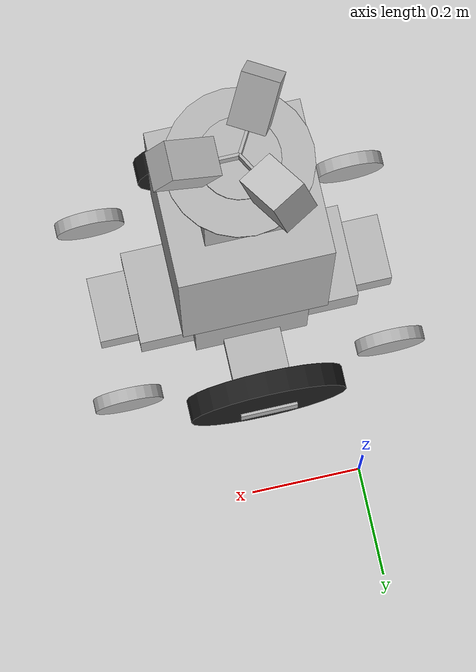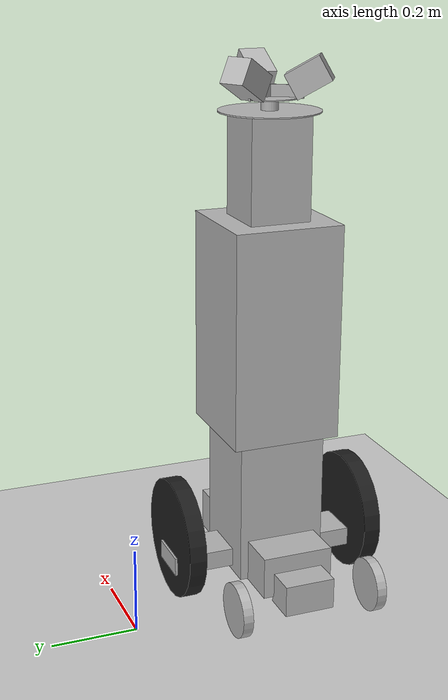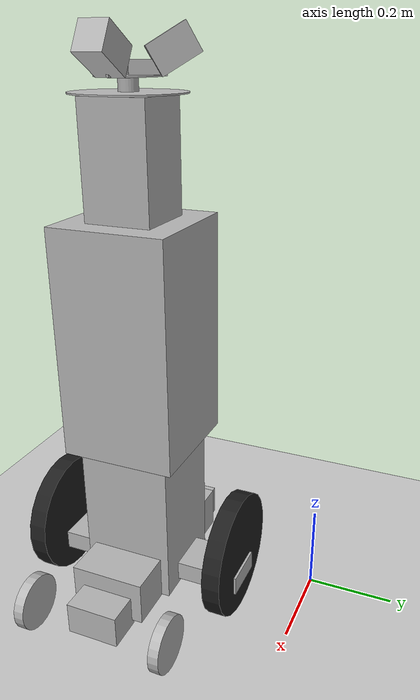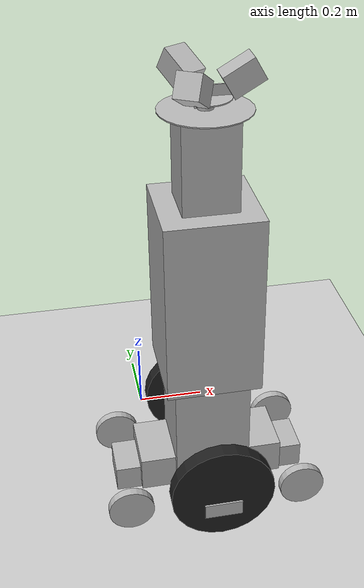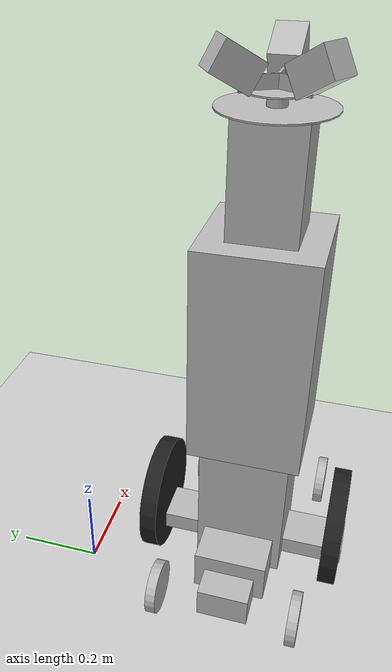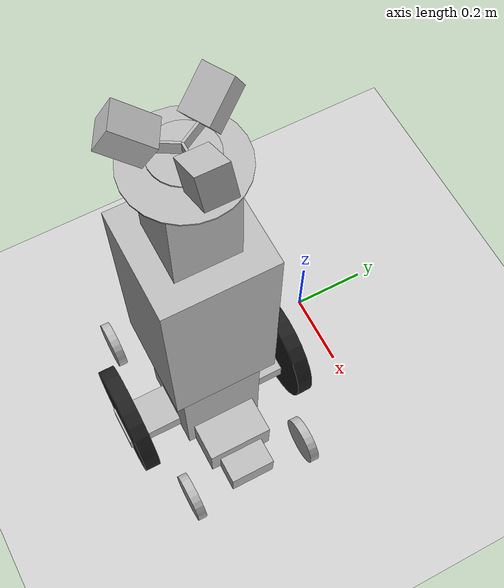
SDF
<sdf version="1.6">
 <world name="default">
  <model name="ground_plane">
   <static>1</static>
   <link name="link">
    <collision name="collision">
     <geometry><plane><normal>0 0 1</normal><size>100 100</size></plane></geometry>
     <surface><friction><ode><mu>100</mu><mu2>50</mu2></ode></friction></surface>
    </collision>
    <visual name="visual">
     <cast_shadows>0</cast_shadows>
     <geometry><plane><normal>0 0 1</normal><size>100 100</size></plane></geometry>
     <material>
      <script><uri>file://media/materials/scripts/gazebo.material</uri><name>Gazebo/Grey</name></script>
     </material>
    </visual>
   </link>
  </model>
  <model name="sq2_ccv">
   <link name="base_footprint">
    <inertial>
     <pose>0 0 -0.0055 0 -0 0</pose>
     <mass>10</mass>
     <inertia>
      <ixx>0.158391</ixx>
      <ixy>0</ixy>
      <ixz>0</ixz>
      <iyy>0.0514783</iyy>
      <iyz>0</iyz>
      <izz>0.115276</izz>
     </inertia>
    </inertial>
    <visual name="base_footprint_fixed_joint_lump__base_link_visual">
     <pose>0 0 0.022 0 -0 0</pose>
     <geometry><box><size>0.105 0.501 0.044</size></box></geometry>
     <material><script><uri>__default__</uri><name>__default__</name></script><shader type="pixel"/></material>
    </visual>
    <visual name="base_footprint_fixed_joint_lump__base2body_link_visual_1">
     <pose>0 0 0.034 0 -0 0</pose>
     <geometry><box><size>0.319 0.125 0.09</size></box></geometry>
     <material><script><uri>__default__</uri><name>__default__</name></script><shader type="pixel"/></material>
    </visual>
    <collision name="base_footprint_fixed_joint_lump__base_link_collision">
     <pose>0 0 0.022 0 -0 0</pose>
     <geometry><box><size>0.105 0.501 0.044</size></box></geometry>
     <surface>
      <friction>
       <ode><mu>0.05</mu><mu2>0.05</mu2><fdir1>0 0 0</fdir1><slip1>0</slip1><slip2>0</slip2></ode>
       <torsional>
        <coefficient>1</coefficient>
        <patch_radius>0</patch_radius>
        <surface_radius>0</surface_radius>
        <use_patch_radius>1</use_patch_radius>
        <ode><slip>0</slip></ode>
       </torsional>
      </friction>
      <bounce><restitution_coefficient>0</restitution_coefficient><threshold>1e+06</threshold></bounce>
      <contact>
       <collide_without_contact>0</collide_without_contact>
       <collide_without_contact_bitmask>1</collide_without_contact_bitmask>
       <collide_bitmask>1</collide_bitmask>
       <ode>
        <soft_cfm>0</soft_cfm>
        <soft_erp>0.2</soft_erp>
        <kp>1e+13</kp>
        <kd>1</kd>
        <max_vel>0.01</max_vel>
        <min_depth>0</min_depth>
       </ode>
       <bullet>
        <split_impulse>1</split_impulse>
        <split_impulse_penetration_threshold>-0.01</split_impulse_penetration_threshold>
        <soft_cfm>0</soft_cfm>
        <soft_erp>0.2</soft_erp>
        <kp>1e+13</kp>
        <kd>1</kd>
       </bullet>
      </contact>
     </surface>
    </collision>
    <collision name="base_footprint_fixed_joint_lump__base2body_link_collision_1">
     <pose>0 0 0.034 0 -0 0</pose>
     <geometry><box><size>0.319 0.125 0.09</size></box></geometry>
     <surface>
      <friction>
       <ode><mu>0.05</mu><mu2>0.05</mu2><fdir1>0 0 0</fdir1><slip1>0</slip1><slip2>0</slip2></ode>
       <torsional>
        <coefficient>1</coefficient>
        <patch_radius>0</patch_radius>
        <surface_radius>0</surface_radius>
        <use_patch_radius>1</use_patch_radius>
        <ode><slip>0</slip></ode>
       </torsional>
      </friction>
      <bounce><restitution_coefficient>0</restitution_coefficient><threshold>1e+06</threshold></bounce>
      <contact>
       <collide_without_contact>0</collide_without_contact>
       <collide_without_contact_bitmask>1</collide_without_contact_bitmask>
       <collide_bitmask>1</collide_bitmask>
       <ode>
        <soft_cfm>0</soft_cfm>
        <soft_erp>0.2</soft_erp>
        <kp>1e+13</kp>
        <kd>1</kd>
        <max_vel>0.01</max_vel>
        <min_depth>0</min_depth>
       </ode>
       <bullet>
        <split_impulse>1</split_impulse>
        <split_impulse_penetration_threshold>-0.01</split_impulse_penetration_threshold>
        <soft_cfm>0</soft_cfm>
        <soft_erp>0.2</soft_erp>
        <kp>1e+13</kp>
        <kd>1</kd>
       </bullet>
      </contact>
     </surface>
    </collision>
   </link>
   <link name="back_casters_pitch_link">
    <pose>-0.1125 0 0.037 0 0 -3.14159</pose>
    <inertial>
     <pose>0.03095 0 -0.002 0 -0 0</pose>
     <mass>5</mass>
     <inertia><ixx>1</ixx><ixy>0</ixy><ixz>0</ixz><iyy>1</iyy><iyz>0</iyz><izz>1</izz></inertia>
    </inertial>
    <visual name="back_casters_pitch_link_visual">
     <pose>0.03095 0 -0.002 0 -0 0</pose>
     <geometry><box><size>0.1179 0.17 0.1</size></box></geometry>
     <material><script><uri>__default__</uri><name>__default__</name></script><shader type="pixel"/></material>
    </visual>
    <collision name="back_casters_pitch_link_collision">
     <pose>0.03095 0 -0.002 0 -0 0</pose>
     <geometry><box><size>0.1179 0.17 0.1</size></box></geometry>
     <surface>
      <friction>
       <ode><mu>0.05</mu><mu2>0.05</mu2><fdir1>0 0 0</fdir1><slip1>0</slip1><slip2>0</slip2></ode>
       <torsional>
        <coefficient>1</coefficient>
        <patch_radius>0</patch_radius>
        <surface_radius>0</surface_radius>
        <use_patch_radius>1</use_patch_radius>
        <ode><slip>0</slip></ode>
       </torsional>
      </friction>
      <bounce><restitution_coefficient>0</restitution_coefficient><threshold>1e+06</threshold></bounce>
      <contact>
       <collide_without_contact>0</collide_without_contact>
       <collide_without_contact_bitmask>1</collide_without_contact_bitmask>
       <collide_bitmask>1</collide_bitmask>
       <ode>
        <soft_cfm>0</soft_cfm>
        <soft_erp>0.2</soft_erp>
        <kp>1e+13</kp>
        <kd>1</kd>
        <max_vel>0.01</max_vel>
        <min_depth>0</min_depth>
       </ode>
       <bullet>
        <split_impulse>1</split_impulse>
        <split_impulse_penetration_threshold>-0.01</split_impulse_penetration_threshold>
        <soft_cfm>0</soft_cfm>
        <soft_erp>0.2</soft_erp>
        <kp>1e+13</kp>
        <kd>1</kd>
       </bullet>
      </contact>
     </surface>
    </collision>
   </link>
   <link name="back_pitch2shaft_link">
    <pose>-0.2024 0 0.007 0 0 -3.14159</pose>
    <inertial>
     <pose>0.034393 0 -0.002857 0 -0 0</pose>
     <mass>7</mass>
     <inertia>
      <ixx>1.05803</ixx>
      <ixy>0</ixy>
      <ixz>0.000172143</ixz>
      <iyy>1.00438</iyy>
      <iyz>8.29592e-11</iyz>
      <izz>1.0581</izz>
     </inertia>
    </inertial>
    <visual name="back_pitch2shaft_link_visual">
     <pose>0.03095 0 0 0 -0 0</pose>
     <geometry><box><size>0.078 0.12 0.074</size></box></geometry>
     <material><script><uri>__default__</uri><name>__default__</name></script><shader type="pixel"/></material>
    </visual>
    <visual name="back_pitch2shaft_link_fixed_joint_lump__back_left_caster_link_visual_1">
     <pose>0.043 0.167 -0.01 1.5708 -0 0</pose>
     <geometry><cylinder><length>0.024</length><radius>0.0635</radius></cylinder></geometry>
     <material><script><uri>__default__</uri><name>__default__</name></script><shader type="pixel"/></material>
    </visual>
    <visual name="back_pitch2shaft_link_fixed_joint_lump__back_right_caster_link_visual_2">
     <pose>0.043 -0.167 -0.01 1.5708 -0 0</pose>
     <geometry><cylinder><length>0.024</length><radius>0.0635</radius></cylinder></geometry>
     <material><script><uri>__default__</uri><name>__default__</name></script><shader type="pixel"/></material>
    </visual>
    <collision name="back_pitch2shaft_link_collision">
     <pose>0.03095 0 0 0 -0 0</pose>
     <geometry><box><size>0.078 0.12 0.074</size></box></geometry>
     <surface>
      <friction>
       <ode><mu>0.05</mu><mu2>0.05</mu2><fdir1>0 0 0</fdir1><slip1>0</slip1><slip2>0</slip2></ode>
       <torsional>
        <coefficient>1</coefficient>
        <patch_radius>0</patch_radius>
        <surface_radius>0</surface_radius>
        <use_patch_radius>1</use_patch_radius>
        <ode><slip>0</slip></ode>
       </torsional>
      </friction>
      <bounce><restitution_coefficient>0</restitution_coefficient><threshold>1e+06</threshold></bounce>
      <contact>
       <collide_without_contact>0</collide_without_contact>
       <collide_without_contact_bitmask>1</collide_without_contact_bitmask>
       <collide_bitmask>1</collide_bitmask>
       <ode>
        <soft_cfm>0</soft_cfm>
        <soft_erp>0.2</soft_erp>
        <kp>1e+13</kp>
        <kd>1</kd>
        <max_vel>0.01</max_vel>
        <min_depth>0</min_depth>
       </ode>
       <bullet>
        <split_impulse>1</split_impulse>
        <split_impulse_penetration_threshold>-0.01</split_impulse_penetration_threshold>
        <soft_cfm>0</soft_cfm>
        <soft_erp>0.2</soft_erp>
        <kp>1e+13</kp>
        <kd>1</kd>
       </bullet>
      </contact>
     </surface>
    </collision>
    <collision name="back_pitch2shaft_link_fixed_joint_lump__back_left_caster_link_collision_1">
     <pose>0.043 0.167 -0.01 1.5708 -0 0</pose>
     <geometry><cylinder><radius>0.0635</radius><length>0.024</length></cylinder></geometry>
     <surface>
      <friction>
       <ode><mu>0</mu><mu2>0</mu2><fdir1>0 0 0</fdir1><slip1>0</slip1><slip2>0</slip2></ode>
       <torsional>
        <coefficient>1</coefficient>
        <patch_radius>0</patch_radius>
        <surface_radius>0</surface_radius>
        <use_patch_radius>1</use_patch_radius>
        <ode><slip>0</slip></ode>
       </torsional>
      </friction>
      <bounce><restitution_coefficient>0</restitution_coefficient><threshold>1e+06</threshold></bounce>
      <contact>
       <collide_without_contact>0</collide_without_contact>
       <collide_without_contact_bitmask>1</collide_without_contact_bitmask>
       <collide_bitmask>1</collide_bitmask>
       <ode>
        <soft_cfm>0</soft_cfm>
        <soft_erp>0.2</soft_erp>
        <kp>1e+13</kp>
        <kd>1</kd>
        <max_vel>0.01</max_vel>
        <min_depth>0</min_depth>
       </ode>
       <bullet>
        <split_impulse>1</split_impulse>
        <split_impulse_penetration_threshold>-0.01</split_impulse_penetration_threshold>
        <soft_cfm>0</soft_cfm>
        <soft_erp>0.2</soft_erp>
        <kp>1e+13</kp>
        <kd>1</kd>
       </bullet>
      </contact>
     </surface>
    </collision>
    <collision name="back_pitch2shaft_link_fixed_joint_lump__back_right_caster_link_collision_2">
     <pose>0.043 -0.167 -0.01 1.5708 -0 0</pose>
     <geometry><cylinder><radius>0.0635</radius><length>0.024</length></cylinder></geometry>
     <surface>
      <friction>
       <ode><mu>0</mu><mu2>0</mu2><fdir1>0 0 0</fdir1><slip1>0</slip1><slip2>0</slip2></ode>
       <torsional>
        <coefficient>1</coefficient>
        <patch_radius>0</patch_radius>
        <surface_radius>0</surface_radius>
        <use_patch_radius>1</use_patch_radius>
        <ode><slip>0</slip></ode>
       </torsional>
      </friction>
      <bounce><restitution_coefficient>0</restitution_coefficient><threshold>1e+06</threshold></bounce>
      <contact>
       <collide_without_contact>0</collide_without_contact>
       <collide_without_contact_bitmask>1</collide_without_contact_bitmask>
       <collide_bitmask>1</collide_bitmask>
       <ode>
        <soft_cfm>0</soft_cfm>
        <soft_erp>0.2</soft_erp>
        <kp>1e+13</kp>
        <kd>1</kd>
        <max_vel>0.01</max_vel>
        <min_depth>0</min_depth>
       </ode>
       <bullet>
        <split_impulse>1</split_impulse>
        <split_impulse_penetration_threshold>-0.01</split_impulse_penetration_threshold>
        <soft_cfm>0</soft_cfm>
        <soft_erp>0.2</soft_erp>
        <kp>1e+13</kp>
        <kd>1</kd>
       </bullet>
      </contact>
     </surface>
    </collision>
   </link>
   <link name="battery_box_link">
    <pose>-0 0 0.017 0 -0 0</pose>
    <inertial>
     <pose>0 0 0.514202 0 -0 0</pose>
     <mass>30.6</mass>
     <inertia><ixx>7.07861</ixx><ixy>0</ixy><ixz>0</ixz><iyy>7.07861</iyy><iyz>0</iyz><izz>3.00213</izz></inertia>
    </inertial>
    <visual name="battery_box_link_visual">
     <pose>0 0 0.24675 0 -0 0</pose>
     <geometry><box><size>0.208 0.208 0.5535</size></box></geometry>
     <material><script><uri>__default__</uri><name>__default__</name></script><shader type="pixel"/></material>
    </visual>
    <visual name="battery_box_link_fixed_joint_lump__upper_body_link_visual_1">
     <pose>0 0 0.569 0 -0 0</pose>
     <geometry><box><size>0.258 0.258 0.508</size></box></geometry>
     <material><script><uri>__default__</uri><name>__default__</name></script><shader type="pixel"/></material>
    </visual>
    <visual name="battery_box_link_fixed_joint_lump__lidar_pillar_link_visual_2">
     <pose>0 0 0.942 0 -0 0</pose>
     <geometry><box><size>0.145 0.145 0.238</size></box></geometry>
     <material><script><uri>__default__</uri><name>__default__</name></script><shader type="pixel"/></material>
    </visual>
    <visual name="battery_box_link_fixed_joint_lump__centerlaser_visual_3">
     <pose>0 0 1.0652 0 -0 0</pose>
     <geometry><cylinder><length>0.003</length><radius>0.1175</radius></cylinder></geometry>
     <material><script><uri>__default__</uri><name>__default__</name></script><shader type="pixel"/></material>
    </visual>
    <visual name="battery_box_link_fixed_joint_lump__lidar_motor_visual_4">
     <pose>0 0 1.06674 0 -0 0</pose>
     <geometry><cylinder><length>0.04908</length><radius>0.02</radius></cylinder></geometry>
     <material><script><uri>__default__</uri><name>__default__</name></script><shader type="pixel"/></material>
    </visual>
    <collision name="battery_box_link_collision">
     <pose>0 0 0.24675 0 -0 0</pose>
     <geometry><box><size>0.208 0.208 0.5535</size></box></geometry>
     <surface>
      <friction>
       <ode><mu>0.05</mu><mu2>0.05</mu2><fdir1>0 0 0</fdir1><slip1>0</slip1><slip2>0</slip2></ode>
       <torsional>
        <coefficient>1</coefficient>
        <patch_radius>0</patch_radius>
        <surface_radius>0</surface_radius>
        <use_patch_radius>1</use_patch_radius>
        <ode><slip>0</slip></ode>
       </torsional>
      </friction>
      <bounce><restitution_coefficient>0</restitution_coefficient><threshold>1e+06</threshold></bounce>
      <contact>
       <collide_without_contact>0</collide_without_contact>
       <collide_without_contact_bitmask>1</collide_without_contact_bitmask>
       <collide_bitmask>1</collide_bitmask>
       <ode>
        <soft_cfm>0</soft_cfm>
        <soft_erp>0.2</soft_erp>
        <kp>1e+13</kp>
        <kd>1</kd>
        <max_vel>0.01</max_vel>
        <min_depth>0</min_depth>
       </ode>
       <bullet>
        <split_impulse>1</split_impulse>
        <split_impulse_penetration_threshold>-0.01</split_impulse_penetration_threshold>
        <soft_cfm>0</soft_cfm>
        <soft_erp>0.2</soft_erp>
        <kp>1e+13</kp>
        <kd>1</kd>
       </bullet>
      </contact>
     </surface>
    </collision>
    <collision name="battery_box_link_fixed_joint_lump__upper_body_link_collision_1">
     <pose>0 0 0.569 0 -0 0</pose>
     <geometry><box><size>0.258 0.258 0.508</size></box></geometry>
     <surface>
      <friction>
       <ode><mu>0.05</mu><mu2>0.05</mu2><fdir1>0 0 0</fdir1><slip1>0</slip1><slip2>0</slip2></ode>
       <torsional>
        <coefficient>1</coefficient>
        <patch_radius>0</patch_radius>
        <surface_radius>0</surface_radius>
        <use_patch_radius>1</use_patch_radius>
        <ode><slip>0</slip></ode>
       </torsional>
      </friction>
      <bounce><restitution_coefficient>0</restitution_coefficient><threshold>1e+06</threshold></bounce>
      <contact>
       <collide_without_contact>0</collide_without_contact>
       <collide_without_contact_bitmask>1</collide_without_contact_bitmask>
       <collide_bitmask>1</collide_bitmask>
       <ode>
        <soft_cfm>0</soft_cfm>
        <soft_erp>0.2</soft_erp>
        <kp>1e+13</kp>
        <kd>1</kd>
        <max_vel>0.01</max_vel>
        <min_depth>0</min_depth>
       </ode>
       <bullet>
        <split_impulse>1</split_impulse>
        <split_impulse_penetration_threshold>-0.01</split_impulse_penetration_threshold>
        <soft_cfm>0</soft_cfm>
        <soft_erp>0.2</soft_erp>
        <kp>1e+13</kp>
        <kd>1</kd>
       </bullet>
      </contact>
     </surface>
    </collision>
    <collision name="battery_box_link_fixed_joint_lump__lidar_pillar_link_collision_2">
     <pose>0 0 0.942 0 -0 0</pose>
     <geometry><box><size>0.145 0.145 0.238</size></box></geometry>
     <surface>
      <friction>
       <ode><mu>0.05</mu><mu2>0.05</mu2><fdir1>0 0 0</fdir1><slip1>0</slip1><slip2>0</slip2></ode>
       <torsional>
        <coefficient>1</coefficient>
        <patch_radius>0</patch_radius>
        <surface_radius>0</surface_radius>
        <use_patch_radius>1</use_patch_radius>
        <ode><slip>0</slip></ode>
       </torsional>
      </friction>
      <bounce><restitution_coefficient>0</restitution_coefficient><threshold>1e+06</threshold></bounce>
      <contact>
       <collide_without_contact>0</collide_without_contact>
       <collide_without_contact_bitmask>1</collide_without_contact_bitmask>
       <collide_bitmask>1</collide_bitmask>
       <ode>
        <soft_cfm>0</soft_cfm>
        <soft_erp>0.2</soft_erp>
        <kp>1e+13</kp>
        <kd>1</kd>
        <max_vel>0.01</max_vel>
        <min_depth>0</min_depth>
       </ode>
       <bullet>
        <split_impulse>1</split_impulse>
        <split_impulse_penetration_threshold>-0.01</split_impulse_penetration_threshold>
        <soft_cfm>0</soft_cfm>
        <soft_erp>0.2</soft_erp>
        <kp>1e+13</kp>
        <kd>1</kd>
       </bullet>
      </contact>
     </surface>
    </collision>
    <collision name="battery_box_link_fixed_joint_lump__centerlaser_collision_3">
     <pose>0 0 1.0652 0 -0 0</pose>
     <geometry><cylinder><radius>0.1175</radius><length>0.003</length></cylinder></geometry>
     <surface>
      <friction>
       <ode><mu>0.05</mu><mu2>0.05</mu2><fdir1>0 0 0</fdir1><slip1>0</slip1><slip2>0</slip2></ode>
       <torsional>
        <coefficient>1</coefficient>
        <patch_radius>0</patch_radius>
        <surface_radius>0</surface_radius>
        <use_patch_radius>1</use_patch_radius>
        <ode><slip>0</slip></ode>
       </torsional>
      </friction>
      <bounce><restitution_coefficient>0</restitution_coefficient><threshold>1e+06</threshold></bounce>
      <contact>
       <collide_without_contact>0</collide_without_contact>
       <collide_without_contact_bitmask>1</collide_without_contact_bitmask>
       <collide_bitmask>1</collide_bitmask>
       <ode>
        <soft_cfm>0</soft_cfm>
        <soft_erp>0.2</soft_erp>
        <kp>1e+13</kp>
        <kd>1</kd>
        <max_vel>0.01</max_vel>
        <min_depth>0</min_depth>
       </ode>
       <bullet>
        <split_impulse>1</split_impulse>
        <split_impulse_penetration_threshold>-0.01</split_impulse_penetration_threshold>
        <soft_cfm>0</soft_cfm>
        <soft_erp>0.2</soft_erp>
        <kp>1e+13</kp>
        <kd>1</kd>
       </bullet>
      </contact>
     </surface>
    </collision>
    <collision name="battery_box_link_fixed_joint_lump__lidar_motor_collision_4">
     <pose>0 0 1.06674 0 -0 0</pose>
     <geometry><cylinder><radius>0.02</radius><length>0.04908</length></cylinder></geometry>
     <surface>
      <friction>
       <ode><mu>0.05</mu><mu2>0.05</mu2><fdir1>0 0 0</fdir1><slip1>0</slip1><slip2>0</slip2></ode>
       <torsional>
        <coefficient>1</coefficient>
        <patch_radius>0</patch_radius>
        <surface_radius>0</surface_radius>
        <use_patch_radius>1</use_patch_radius>
        <ode><slip>0</slip></ode>
       </torsional>
      </friction>
      <bounce><restitution_coefficient>0</restitution_coefficient><threshold>1e+06</threshold></bounce>
      <contact>
       <collide_without_contact>0</collide_without_contact>
       <collide_without_contact_bitmask>1</collide_without_contact_bitmask>
       <collide_bitmask>1</collide_bitmask>
       <ode>
        <soft_cfm>0</soft_cfm>
        <soft_erp>0.2</soft_erp>
        <kp>1e+13</kp>
        <kd>1</kd>
        <max_vel>0.01</max_vel>
        <min_depth>0</min_depth>
       </ode>
       <bullet>
        <split_impulse>1</split_impulse>
        <split_impulse_penetration_threshold>-0.01</split_impulse_penetration_threshold>
        <soft_cfm>0</soft_cfm>
        <soft_erp>0.2</soft_erp>
        <kp>1e+13</kp>
        <kd>1</kd>
       </bullet>
      </contact>
     </surface>
    </collision>
   </link>
   <link name="front_casters_pitch_link">
    <pose>0.1125 0 0.037 0 -0 0</pose>
    <inertial>
     <pose>0.03095 0 -0.002 0 -0 0</pose>
     <mass>5</mass>
     <inertia><ixx>1</ixx><ixy>0</ixy><ixz>0</ixz><iyy>1</iyy><iyz>0</iyz><izz>1</izz></inertia>
    </inertial>
    <visual name="front_casters_pitch_link_visual">
     <pose>0.03095 0 -0.002 0 -0 0</pose>
     <geometry><box><size>0.1179 0.17 0.1</size></box></geometry>
     <material><script><uri>__default__</uri><name>__default__</name></script><shader type="pixel"/></material>
    </visual>
    <collision name="front_casters_pitch_link_collision">
     <pose>0.03095 0 -0.002 0 -0 0</pose>
     <geometry><box><size>0.1179 0.17 0.1</size></box></geometry>
     <surface>
      <friction>
       <ode><mu>0.05</mu><mu2>0.05</mu2><fdir1>0 0 0</fdir1><slip1>0</slip1><slip2>0</slip2></ode>
       <torsional>
        <coefficient>1</coefficient>
        <patch_radius>0</patch_radius>
        <surface_radius>0</surface_radius>
        <use_patch_radius>1</use_patch_radius>
        <ode><slip>0</slip></ode>
       </torsional>
      </friction>
      <bounce><restitution_coefficient>0</restitution_coefficient><threshold>1e+06</threshold></bounce>
      <contact>
       <collide_without_contact>0</collide_without_contact>
       <collide_without_contact_bitmask>1</collide_without_contact_bitmask>
       <collide_bitmask>1</collide_bitmask>
       <ode>
        <soft_cfm>0</soft_cfm>
        <soft_erp>0.2</soft_erp>
        <kp>1e+13</kp>
        <kd>1</kd>
        <max_vel>0.01</max_vel>
        <min_depth>0</min_depth>
       </ode>
       <bullet>
        <split_impulse>1</split_impulse>
        <split_impulse_penetration_threshold>-0.01</split_impulse_penetration_threshold>
        <soft_cfm>0</soft_cfm>
        <soft_erp>0.2</soft_erp>
        <kp>1e+13</kp>
        <kd>1</kd>
       </bullet>
      </contact>
     </surface>
    </collision>
   </link>
   <link name="front_pitch2shaft_link">
    <pose>0.2024 -0 0.007 0 -0 0</pose>
    <inertial>
     <pose>0.034393 0 -0.002857 0 -0 0</pose>
     <mass>7</mass>
     <inertia>
      <ixx>1.05803</ixx>
      <ixy>0</ixy>
      <ixz>0.000172143</ixz>
      <iyy>1.00438</iyy>
      <iyz>8.29592e-11</iyz>
      <izz>1.0581</izz>
     </inertia>
    </inertial>
    <visual name="front_pitch2shaft_link_visual">
     <pose>0.03095 0 0 0 -0 0</pose>
     <geometry><box><size>0.078 0.12 0.074</size></box></geometry>
     <material><script><uri>__default__</uri><name>__default__</name></script><shader type="pixel"/></material>
    </visual>
    <visual name="front_pitch2shaft_link_fixed_joint_lump__front_left_caster_link_visual_1">
     <pose>0.043 0.167 -0.01 1.5708 -0 0</pose>
     <geometry><cylinder><length>0.024</length><radius>0.0635</radius></cylinder></geometry>
     <material><script><uri>__default__</uri><name>__default__</name></script><shader type="pixel"/></material>
    </visual>
    <visual name="front_pitch2shaft_link_fixed_joint_lump__front_right_caster_link_visual_2">
     <pose>0.043 -0.167 -0.01 1.5708 -0 0</pose>
     <geometry><cylinder><length>0.024</length><radius>0.0635</radius></cylinder></geometry>
     <material><script><uri>__default__</uri><name>__default__</name></script><shader type="pixel"/></material>
    </visual>
    <collision name="front_pitch2shaft_link_collision">
     <pose>0.03095 0 0 0 -0 0</pose>
     <geometry><box><size>0.078 0.12 0.074</size></box></geometry>
     <surface>
      <friction>
       <ode><mu>0.05</mu><mu2>0.05</mu2><fdir1>0 0 0</fdir1><slip1>0</slip1><slip2>0</slip2></ode>
       <torsional>
        <coefficient>1</coefficient>
        <patch_radius>0</patch_radius>
        <surface_radius>0</surface_radius>
        <use_patch_radius>1</use_patch_radius>
        <ode><slip>0</slip></ode>
       </torsional>
      </friction>
      <bounce><restitution_coefficient>0</restitution_coefficient><threshold>1e+06</threshold></bounce>
      <contact>
       <collide_without_contact>0</collide_without_contact>
       <collide_without_contact_bitmask>1</collide_without_contact_bitmask>
       <collide_bitmask>1</collide_bitmask>
       <ode>
        <soft_cfm>0</soft_cfm>
        <soft_erp>0.2</soft_erp>
        <kp>1e+13</kp>
        <kd>1</kd>
        <max_vel>0.01</max_vel>
        <min_depth>0</min_depth>
       </ode>
       <bullet>
        <split_impulse>1</split_impulse>
        <split_impulse_penetration_threshold>-0.01</split_impulse_penetration_threshold>
        <soft_cfm>0</soft_cfm>
        <soft_erp>0.2</soft_erp>
        <kp>1e+13</kp>
        <kd>1</kd>
       </bullet>
      </contact>
     </surface>
    </collision>
    <collision name="front_pitch2shaft_link_fixed_joint_lump__front_left_caster_link_collision_1">
     <pose>0.043 0.167 -0.01 1.5708 -0 0</pose>
     <geometry><cylinder><radius>0.0635</radius><length>0.024</length></cylinder></geometry>
     <surface>
      <friction>
       <ode><mu>0</mu><mu2>0</mu2><fdir1>0 0 0</fdir1><slip1>0</slip1><slip2>0</slip2></ode>
       <torsional>
        <coefficient>1</coefficient>
        <patch_radius>0</patch_radius>
        <surface_radius>0</surface_radius>
        <use_patch_radius>1</use_patch_radius>
        <ode><slip>0</slip></ode>
       </torsional>
      </friction>
      <bounce><restitution_coefficient>0</restitution_coefficient><threshold>1e+06</threshold></bounce>
      <contact>
       <collide_without_contact>0</collide_without_contact>
       <collide_without_contact_bitmask>1</collide_without_contact_bitmask>
       <collide_bitmask>1</collide_bitmask>
       <ode>
        <soft_cfm>0</soft_cfm>
        <soft_erp>0.2</soft_erp>
        <kp>1e+13</kp>
        <kd>1</kd>
        <max_vel>0.01</max_vel>
        <min_depth>0</min_depth>
       </ode>
       <bullet>
        <split_impulse>1</split_impulse>
        <split_impulse_penetration_threshold>-0.01</split_impulse_penetration_threshold>
        <soft_cfm>0</soft_cfm>
        <soft_erp>0.2</soft_erp>
        <kp>1e+13</kp>
        <kd>1</kd>
       </bullet>
      </contact>
     </surface>
    </collision>
    <collision name="front_pitch2shaft_link_fixed_joint_lump__front_right_caster_link_collision_2">
     <pose>0.043 -0.167 -0.01 1.5708 -0 0</pose>
     <geometry><cylinder><radius>0.0635</radius><length>0.024</length></cylinder></geometry>
     <surface>
      <friction>
       <ode><mu>0</mu><mu2>0</mu2><fdir1>0 0 0</fdir1><slip1>0</slip1><slip2>0</slip2></ode>
       <torsional>
        <coefficient>1</coefficient>
        <patch_radius>0</patch_radius>
        <surface_radius>0</surface_radius>
        <use_patch_radius>1</use_patch_radius>
        <ode><slip>0</slip></ode>
       </torsional>
      </friction>
      <bounce><restitution_coefficient>0</restitution_coefficient><threshold>1e+06</threshold></bounce>
      <contact>
       <collide_without_contact>0</collide_without_contact>
       <collide_without_contact_bitmask>1</collide_without_contact_bitmask>
       <collide_bitmask>1</collide_bitmask>
       <ode>
        <soft_cfm>0</soft_cfm>
        <soft_erp>0.2</soft_erp>
        <kp>1e+13</kp>
        <kd>1</kd>
        <max_vel>0.01</max_vel>
        <min_depth>0</min_depth>
       </ode>
       <bullet>
        <split_impulse>1</split_impulse>
        <split_impulse_penetration_threshold>-0.01</split_impulse_penetration_threshold>
        <soft_cfm>0</soft_cfm>
        <soft_erp>0.2</soft_erp>
        <kp>1e+13</kp>
        <kd>1</kd>
       </bullet>
      </contact>
     </surface>
    </collision>
   </link>
   <link name="left_steering_link">
    <pose>0 0.2245 0.048 0 -0 0</pose>
    <inertial>
     <pose>0 0 0.0015 0 -0 0</pose>
     <mass>1</mass>
     <inertia>
      <ixx>7.08906e-05</ixx>
      <ixy>0</ixy>
      <ixz>0</ixz>
      <iyy>7.08906e-05</iyy>
      <iyz>0</iyz>
      <izz>0.000140281</izz>
     </inertia>
    </inertial>
    <visual name="left_steering_link_visual">
     <pose>0 0 0.0015 0 -0 0</pose>
     <geometry><cylinder><length>0.003</length><radius>0.01675</radius></cylinder></geometry>
     <material><script><uri>__default__</uri><name>__default__</name></script><shader type="pixel"/></material>
    </visual>
    <collision name="left_steering_link_collision">
     <pose>0 0 0.0015 0 -0 0</pose>
     <geometry><cylinder><radius>0.01675</radius><length>0.003</length></cylinder></geometry>
     <surface>
      <friction>
       <ode><mu>0.05</mu><mu2>0.05</mu2><fdir1>0 0 0</fdir1><slip1>0</slip1><slip2>0</slip2></ode>
       <torsional>
        <coefficient>1</coefficient>
        <patch_radius>0</patch_radius>
        <surface_radius>0</surface_radius>
        <use_patch_radius>1</use_patch_radius>
        <ode><slip>0</slip></ode>
       </torsional>
      </friction>
      <bounce><restitution_coefficient>0</restitution_coefficient><threshold>1e+06</threshold></bounce>
      <contact>
       <collide_without_contact>0</collide_without_contact>
       <collide_without_contact_bitmask>1</collide_without_contact_bitmask>
       <collide_bitmask>1</collide_bitmask>
       <ode>
        <soft_cfm>0</soft_cfm>
        <soft_erp>0.2</soft_erp>
        <kp>1e+13</kp>
        <kd>1</kd>
        <max_vel>0.01</max_vel>
        <min_depth>0</min_depth>
       </ode>
       <bullet>
        <split_impulse>1</split_impulse>
        <split_impulse_penetration_threshold>-0.01</split_impulse_penetration_threshold>
        <soft_cfm>0</soft_cfm>
        <soft_erp>0.2</soft_erp>
        <kp>1e+13</kp>
        <kd>1</kd>
       </bullet>
      </contact>
     </surface>
    </collision>
   </link>
   <link name="left_wheel_link">
    <pose>0 0.2245 0.0755 0 -0 0</pose>
    <inertial>
     <pose>0 0 0 1.5708 -0 0</pose>
     <mass>5</mass>
     <inertia>
      <ixx>0.0264579</ixx>
      <ixy>0</ixy>
      <ixz>0</ixz>
      <iyy>0.0264579</iyy>
      <iyz>0</iyz>
      <izz>0.0514806</izz>
     </inertia>
    </inertial>
    <visual name="left_wheel_link_visual">
     <pose>0 0 0 1.5708 -0 0</pose>
     <geometry><cylinder><length>0.0415</length><radius>0.1435</radius></cylinder></geometry>
     <material>
      <script><name>Gazebo/Black</name><uri>file://media/materials/scripts/gazebo.material</uri></script>
      <shader type="pixel"/>
     </material>
    </visual>
    <collision name="left_wheel_link_collision">
     <pose>0 0 0 1.5708 -0 0</pose>
     <geometry><cylinder><radius>0.1435</radius><length>0.0415</length></cylinder></geometry>
     <surface>
      <friction>
       <ode><mu>0.8</mu><mu2>0.8</mu2><fdir1>0 0 0</fdir1><slip1>0</slip1><slip2>0</slip2></ode>
       <torsional>
        <coefficient>1</coefficient>
        <patch_radius>0</patch_radius>
        <surface_radius>0</surface_radius>
        <use_patch_radius>1</use_patch_radius>
        <ode><slip>0</slip></ode>
       </torsional>
      </friction>
      <bounce><restitution_coefficient>0</restitution_coefficient><threshold>1e+06</threshold></bounce>
      <contact>
       <collide_without_contact>0</collide_without_contact>
       <collide_without_contact_bitmask>1</collide_without_contact_bitmask>
       <collide_bitmask>1</collide_bitmask>
       <ode>
        <soft_cfm>0</soft_cfm>
        <soft_erp>0.2</soft_erp>
        <kp>1e+13</kp>
        <kd>1</kd>
        <max_vel>0.01</max_vel>
        <min_depth>0</min_depth>
       </ode>
       <bullet>
        <split_impulse>1</split_impulse>
        <split_impulse_penetration_threshold>-0.01</split_impulse_penetration_threshold>
        <soft_cfm>0</soft_cfm>
        <soft_erp>0.2</soft_erp>
        <kp>1e+13</kp>
        <kd>1</kd>
       </bullet>
      </contact>
     </surface>
    </collision>
   </link>
   <link name="right_steering_link">
    <pose>-0 -0.2245 0.048 0 -0 0</pose>
    <inertial>
     <pose>0 0 0.0015 0 -0 0</pose>
     <mass>1</mass>
     <inertia>
      <ixx>7.08906e-05</ixx>
      <ixy>0</ixy>
      <ixz>0</ixz>
      <iyy>7.08906e-05</iyy>
      <iyz>0</iyz>
      <izz>0.000140281</izz>
     </inertia>
    </inertial>
    <visual name="right_steering_link_visual">
     <pose>0 0 0.0015 0 -0 0</pose>
     <geometry><cylinder><length>0.003</length><radius>0.01675</radius></cylinder></geometry>
     <material><script><uri>__default__</uri><name>__default__</name></script><shader type="pixel"/></material>
    </visual>
    <collision name="right_steering_link_collision">
     <pose>0 0 0.0015 0 -0 0</pose>
     <geometry><cylinder><radius>0.01675</radius><length>0.003</length></cylinder></geometry>
     <surface>
      <friction>
       <ode><mu>0.05</mu><mu2>0.05</mu2><fdir1>0 0 0</fdir1><slip1>0</slip1><slip2>0</slip2></ode>
       <torsional>
        <coefficient>1</coefficient>
        <patch_radius>0</patch_radius>
        <surface_radius>0</surface_radius>
        <use_patch_radius>1</use_patch_radius>
        <ode><slip>0</slip></ode>
       </torsional>
      </friction>
      <bounce><restitution_coefficient>0</restitution_coefficient><threshold>1e+06</threshold></bounce>
      <contact>
       <collide_without_contact>0</collide_without_contact>
       <collide_without_contact_bitmask>1</collide_without_contact_bitmask>
       <collide_bitmask>1</collide_bitmask>
       <ode>
        <soft_cfm>0</soft_cfm>
        <soft_erp>0.2</soft_erp>
        <kp>1e+13</kp>
        <kd>1</kd>
        <max_vel>0.01</max_vel>
        <min_depth>0</min_depth>
       </ode>
       <bullet>
        <split_impulse>1</split_impulse>
        <split_impulse_penetration_threshold>-0.01</split_impulse_penetration_threshold>
        <soft_cfm>0</soft_cfm>
        <soft_erp>0.2</soft_erp>
        <kp>1e+13</kp>
        <kd>1</kd>
       </bullet>
      </contact>
     </surface>
    </collision>
   </link>
   <link name="right_wheel_link">
    <pose>-0 -0.2245 0.0755 0 -0 0</pose>
    <inertial>
     <pose>0 0 0 1.5708 -0 0</pose>
     <mass>5</mass>
     <inertia>
      <ixx>0.0264579</ixx>
      <ixy>0</ixy>
      <ixz>0</ixz>
      <iyy>0.0264579</iyy>
      <iyz>0</iyz>
      <izz>0.0514806</izz>
     </inertia>
    </inertial>
    <visual name="right_wheel_link_visual">
     <pose>0 0 0 1.5708 -0 0</pose>
     <geometry><cylinder><length>0.0415</length><radius>0.1435</radius></cylinder></geometry>
     <material>
      <script><name>Gazebo/Black</name><uri>file://media/materials/scripts/gazebo.material</uri></script>
      <shader type="pixel"/>
     </material>
    </visual>
    <collision name="right_wheel_link_collision">
     <pose>0 0 0 1.5708 -0 0</pose>
     <geometry><cylinder><radius>0.1435</radius><length>0.0415</length></cylinder></geometry>
     <surface>
      <friction>
       <ode><mu>0.8</mu><mu2>0.8</mu2><fdir1>0 0 0</fdir1><slip1>0</slip1><slip2>0</slip2></ode>
       <torsional>
        <coefficient>1</coefficient>
        <patch_radius>0</patch_radius>
        <surface_radius>0</surface_radius>
        <use_patch_radius>1</use_patch_radius>
        <ode><slip>0</slip></ode>
       </torsional>
      </friction>
      <bounce><restitution_coefficient>0</restitution_coefficient><threshold>1e+06</threshold></bounce>
      <contact>
       <collide_without_contact>0</collide_without_contact>
       <collide_without_contact_bitmask>1</collide_without_contact_bitmask>
       <collide_bitmask>1</collide_bitmask>
       <ode>
        <soft_cfm>0</soft_cfm>
        <soft_erp>0.2</soft_erp>
        <kp>1e+13</kp>
        <kd>1</kd>
        <max_vel>0.01</max_vel>
        <min_depth>0</min_depth>
       </ode>
       <bullet>
        <split_impulse>1</split_impulse>
        <split_impulse_penetration_threshold>-0.01</split_impulse_penetration_threshold>
        <soft_cfm>0</soft_cfm>
        <soft_erp>0.2</soft_erp>
        <kp>1e+13</kp>
        <kd>1</kd>
       </bullet>
      </contact>
     </surface>
    </collision>
   </link>
   <link name="turn_table">
    <pose>-0 0 1.11028 0 -0 0</pose>
    <inertial>
     <pose>0 0 0.032157 0 -0 0</pose>
     <mass>1.5</mass>
     <inertia>
      <ixx>0.00547591</ixx>
      <ixy>-2.08976e-10</ixy>
      <ixz>-1.53742e-11</ixz>
      <iyy>0.00547591</iyy>
      <iyz>-2.66289e-11</iyz>
      <izz>0.00846687</izz>
     </inertia>
    </inertial>
    <sensor name="laser1_lrf_sensor" type="ray">
     <visualize>0</visualize>
     <update_rate>100</update_rate>
     <ray>
      <scan>
       <horizontal>
        <samples>416</samples>
        <resolution>1</resolution>
        <min_angle>-2.35619</min_angle>
        <max_angle>2.35619</max_angle>
       </horizontal>
       <vertical><samples>1</samples><min_angle>0</min_angle><max_angle>0</max_angle></vertical>
      </scan>
      <range><min>0.1</min><max>30</max><resolution>0.01</resolution></range>
      <noise><type>gaussian</type><mean>0</mean><stddev>0.03</stddev></noise>
     </ray>
     <plugin name="gazebo_ros_laser1_lrf_controller" filename="libgazebo_ros_laser.so">
      <topicName>/scan1</topicName>
      <frameName>laser1_link</frameName>
      <robotNamespace>/</robotNamespace>
     </plugin>
     <pose>-0.047058 0.081507 0.05247 0 1.0472 2.0944</pose>
    </sensor>
    <sensor name="laser2_lrf_sensor" type="ray">
     <visualize>0</visualize>
     <update_rate>100</update_rate>
     <ray>
      <scan>
       <horizontal>
        <samples>416</samples>
        <resolution>1</resolution>
        <min_angle>-2.35619</min_angle>
        <max_angle>2.35619</max_angle>
       </horizontal>
       <vertical><samples>1</samples><min_angle>0</min_angle><max_angle>0</max_angle></vertical>
      </scan>
      <range><min>0.1</min><max>30</max><resolution>0.01</resolution></range>
      <noise><type>gaussian</type><mean>0</mean><stddev>0.03</stddev></noise>
     </ray>
     <plugin name="gazebo_ros_laser2_lrf_controller" filename="libgazebo_ros_laser.so">
      <topicName>/scan2</topicName>
      <frameName>laser2_link</frameName>
      <robotNamespace>/</robotNamespace>
     </plugin>
     <pose>-0.047058 -0.081507 0.05247 0 1.0472 -2.09439</pose>
    </sensor>
    <sensor name="laser3_lrf_sensor" type="ray">
     <visualize>0</visualize>
     <update_rate>100</update_rate>
     <ray>
      <scan>
       <horizontal>
        <samples>416</samples>
        <resolution>1</resolution>
        <min_angle>-2.35619</min_angle>
        <max_angle>2.35619</max_angle>
       </horizontal>
       <vertical><samples>1</samples><min_angle>0</min_angle><max_angle>0</max_angle></vertical>
      </scan>
      <range><min>0.1</min><max>30</max><resolution>0.01</resolution></range>
      <noise><type>gaussian</type><mean>0</mean><stddev>0.03</stddev></noise>
     </ray>
     <plugin name="gazebo_ros_laser3_lrf_controller" filename="libgazebo_ros_laser.so">
      <topicName>/scan3</topicName>
      <frameName>laser3_link</frameName>
      <robotNamespace>/</robotNamespace>
     </plugin>
     <pose>0.094116 0 0.05247 0 1.0472 0</pose>
    </sensor>
    <visual name="turn_table_visual">
     <pose>0 0 0.0015 0 -0 0</pose>
     <geometry><cylinder><length>0.003</length><radius>0.065</radius></cylinder></geometry>
     <material><script><uri>__default__</uri><name>__default__</name></script><shader type="pixel"/></material>
    </visual>
    <visual name="turn_table_fixed_joint_lump__turntable2laser1_link_visual_1">
     <pose>-0.01875 0.032476 0.015 0 -0 2.0944</pose>
     <geometry><box><size>0.075 0.005 0.03</size></box></geometry>
     <material><shader type="pixel"/></material>
    </visual>
    <visual name="turn_table_fixed_joint_lump__laser1_base_link_visual_2">
     <pose>-0.043269 0.074945 0.048095 0 1.0472 2.0944</pose>
     <geometry><box><size>0.062 0.062 0.0875</size></box></geometry>
     <material><shader type="pixel"/></material>
    </visual>
    <visual name="turn_table_fixed_joint_lump__turntable2laser2_link_visual_3">
     <pose>-0.01875 -0.032476 0.015 0 -0 -2.09439</pose>
     <geometry><box><size>0.075 0.005 0.03</size></box></geometry>
     <material><shader type="pixel"/></material>
    </visual>
    <visual name="turn_table_fixed_joint_lump__laser2_base_link_visual_4">
     <pose>-0.043269 -0.074945 0.048095 0 1.0472 -2.09439</pose>
     <geometry><box><size>0.062 0.062 0.0875</size></box></geometry>
     <material><shader type="pixel"/></material>
    </visual>
    <visual name="turn_table_fixed_joint_lump__turntable2laser3_link_visual_5">
     <pose>0.0375 0 0.015 0 -0 0</pose>
     <geometry><box><size>0.075 0.005 0.03</size></box></geometry>
     <material><shader type="pixel"/></material>
    </visual>
    <visual name="turn_table_fixed_joint_lump__laser3_base_link_visual_6">
     <pose>0.086539 0 0.048095 0 1.0472 0</pose>
     <geometry><box><size>0.062 0.062 0.0875</size></box></geometry>
     <material><shader type="pixel"/></material>
    </visual>
    <collision name="turn_table_collision">
     <pose>0 0 0.0015 0 -0 0</pose>
     <geometry><cylinder><radius>0.065</radius><length>0.003</length></cylinder></geometry>
     <surface>
      <friction>
       <ode><mu>0.05</mu><mu2>0.05</mu2><fdir1>0 0 0</fdir1><slip1>0</slip1><slip2>0</slip2></ode>
       <torsional>
        <coefficient>1</coefficient>
        <patch_radius>0</patch_radius>
        <surface_radius>0</surface_radius>
        <use_patch_radius>1</use_patch_radius>
        <ode><slip>0</slip></ode>
       </torsional>
      </friction>
      <bounce><restitution_coefficient>0</restitution_coefficient><threshold>1e+06</threshold></bounce>
      <contact>
       <collide_without_contact>0</collide_without_contact>
       <collide_without_contact_bitmask>1</collide_without_contact_bitmask>
       <collide_bitmask>1</collide_bitmask>
       <ode>
        <soft_cfm>0</soft_cfm>
        <soft_erp>0.2</soft_erp>
        <kp>1e+13</kp>
        <kd>1</kd>
        <max_vel>0.01</max_vel>
        <min_depth>0</min_depth>
       </ode>
       <bullet>
        <split_impulse>1</split_impulse>
        <split_impulse_penetration_threshold>-0.01</split_impulse_penetration_threshold>
        <soft_cfm>0</soft_cfm>
        <soft_erp>0.2</soft_erp>
        <kp>1e+13</kp>
        <kd>1</kd>
       </bullet>
      </contact>
     </surface>
    </collision>
    <collision name="turn_table_fixed_joint_lump__turntable2laser1_link_collision_1">
     <pose>-0.01875 0.032476 0.015 0 -0 2.0944</pose>
     <geometry><box><size>0.075 0.005 0.03</size></box></geometry>
     <surface>
      <friction>
       <ode><mu>1</mu><mu2>1</mu2><fdir1>0 0 0</fdir1><slip1>0</slip1><slip2>0</slip2></ode>
       <torsional>
        <coefficient>1</coefficient>
        <patch_radius>0</patch_radius>
        <surface_radius>0</surface_radius>
        <use_patch_radius>1</use_patch_radius>
        <ode><slip>0</slip></ode>
       </torsional>
      </friction>
      <bounce><restitution_coefficient>0</restitution_coefficient><threshold>1e+06</threshold></bounce>
      <contact>
       <collide_without_contact>0</collide_without_contact>
       <collide_without_contact_bitmask>1</collide_without_contact_bitmask>
       <collide_bitmask>1</collide_bitmask>
       <ode>
        <soft_cfm>0</soft_cfm>
        <soft_erp>0.2</soft_erp>
        <kp>1e+13</kp>
        <kd>1</kd>
        <max_vel>0.01</max_vel>
        <min_depth>0</min_depth>
       </ode>
       <bullet>
        <split_impulse>1</split_impulse>
        <split_impulse_penetration_threshold>-0.01</split_impulse_penetration_threshold>
        <soft_cfm>0</soft_cfm>
        <soft_erp>0.2</soft_erp>
        <kp>1e+13</kp>
        <kd>1</kd>
       </bullet>
      </contact>
     </surface>
    </collision>
    <collision name="turn_table_fixed_joint_lump__laser1_base_link_collision_2">
     <pose>-0.043269 0.074945 0.048095 0 1.0472 2.0944</pose>
     <geometry><box><size>0.062 0.062 0.0875</size></box></geometry>
     <surface>
      <friction>
       <ode><mu>1</mu><mu2>1</mu2><fdir1>0 0 0</fdir1><slip1>0</slip1><slip2>0</slip2></ode>
       <torsional>
        <coefficient>1</coefficient>
        <patch_radius>0</patch_radius>
        <surface_radius>0</surface_radius>
        <use_patch_radius>1</use_patch_radius>
        <ode><slip>0</slip></ode>
       </torsional>
      </friction>
      <bounce><restitution_coefficient>0</restitution_coefficient><threshold>1e+06</threshold></bounce>
      <contact>
       <collide_without_contact>0</collide_without_contact>
       <collide_without_contact_bitmask>1</collide_without_contact_bitmask>
       <collide_bitmask>1</collide_bitmask>
       <ode>
        <soft_cfm>0</soft_cfm>
        <soft_erp>0.2</soft_erp>
        <kp>1e+13</kp>
        <kd>1</kd>
        <max_vel>0.01</max_vel>
        <min_depth>0</min_depth>
       </ode>
       <bullet>
        <split_impulse>1</split_impulse>
        <split_impulse_penetration_threshold>-0.01</split_impulse_penetration_threshold>
        <soft_cfm>0</soft_cfm>
        <soft_erp>0.2</soft_erp>
        <kp>1e+13</kp>
        <kd>1</kd>
       </bullet>
      </contact>
     </surface>
    </collision>
    <collision name="turn_table_fixed_joint_lump__turntable2laser2_link_collision_3">
     <pose>-0.01875 -0.032476 0.015 0 0 -2.09439</pose>
     <geometry><box><size>0.075 0.005 0.03</size></box></geometry>
     <surface>
      <friction>
       <ode><mu>1</mu><mu2>1</mu2><fdir1>0 0 0</fdir1><slip1>0</slip1><slip2>0</slip2></ode>
       <torsional>
        <coefficient>1</coefficient>
        <patch_radius>0</patch_radius>
        <surface_radius>0</surface_radius>
        <use_patch_radius>1</use_patch_radius>
        <ode><slip>0</slip></ode>
       </torsional>
      </friction>
      <bounce><restitution_coefficient>0</restitution_coefficient><threshold>1e+06</threshold></bounce>
      <contact>
       <collide_without_contact>0</collide_without_contact>
       <collide_without_contact_bitmask>1</collide_without_contact_bitmask>
       <collide_bitmask>1</collide_bitmask>
       <ode>
        <soft_cfm>0</soft_cfm>
        <soft_erp>0.2</soft_erp>
        <kp>1e+13</kp>
        <kd>1</kd>
        <max_vel>0.01</max_vel>
        <min_depth>0</min_depth>
       </ode>
       <bullet>
        <split_impulse>1</split_impulse>
        <split_impulse_penetration_threshold>-0.01</split_impulse_penetration_threshold>
        <soft_cfm>0</soft_cfm>
        <soft_erp>0.2</soft_erp>
        <kp>1e+13</kp>
        <kd>1</kd>
       </bullet>
      </contact>
     </surface>
    </collision>
    <collision name="turn_table_fixed_joint_lump__laser2_base_link_collision_4">
     <pose>-0.043269 -0.074945 0.048095 0 1.0472 -2.09439</pose>
     <geometry><box><size>0.062 0.062 0.0875</size></box></geometry>
     <surface>
      <friction>
       <ode><mu>1</mu><mu2>1</mu2><fdir1>0 0 0</fdir1><slip1>0</slip1><slip2>0</slip2></ode>
       <torsional>
        <coefficient>1</coefficient>
        <patch_radius>0</patch_radius>
        <surface_radius>0</surface_radius>
        <use_patch_radius>1</use_patch_radius>
        <ode><slip>0</slip></ode>
       </torsional>
      </friction>
      <bounce><restitution_coefficient>0</restitution_coefficient><threshold>1e+06</threshold></bounce>
      <contact>
       <collide_without_contact>0</collide_without_contact>
       <collide_without_contact_bitmask>1</collide_without_contact_bitmask>
       <collide_bitmask>1</collide_bitmask>
       <ode>
        <soft_cfm>0</soft_cfm>
        <soft_erp>0.2</soft_erp>
        <kp>1e+13</kp>
        <kd>1</kd>
        <max_vel>0.01</max_vel>
        <min_depth>0</min_depth>
       </ode>
       <bullet>
        <split_impulse>1</split_impulse>
        <split_impulse_penetration_threshold>-0.01</split_impulse_penetration_threshold>
        <soft_cfm>0</soft_cfm>
        <soft_erp>0.2</soft_erp>
        <kp>1e+13</kp>
        <kd>1</kd>
       </bullet>
      </contact>
     </surface>
    </collision>
    <collision name="turn_table_fixed_joint_lump__turntable2laser3_link_collision_5">
     <pose>0.0375 0 0.015 0 -0 0</pose>
     <geometry><box><size>0.075 0.005 0.03</size></box></geometry>
     <surface>
      <friction>
       <ode><mu>1</mu><mu2>1</mu2><fdir1>0 0 0</fdir1><slip1>0</slip1><slip2>0</slip2></ode>
       <torsional>
        <coefficient>1</coefficient>
        <patch_radius>0</patch_radius>
        <surface_radius>0</surface_radius>
        <use_patch_radius>1</use_patch_radius>
        <ode><slip>0</slip></ode>
       </torsional>
      </friction>
      <bounce><restitution_coefficient>0</restitution_coefficient><threshold>1e+06</threshold></bounce>
      <contact>
       <collide_without_contact>0</collide_without_contact>
       <collide_without_contact_bitmask>1</collide_without_contact_bitmask>
       <collide_bitmask>1</collide_bitmask>
       <ode>
        <soft_cfm>0</soft_cfm>
        <soft_erp>0.2</soft_erp>
        <kp>1e+13</kp>
        <kd>1</kd>
        <max_vel>0.01</max_vel>
        <min_depth>0</min_depth>
       </ode>
       <bullet>
        <split_impulse>1</split_impulse>
        <split_impulse_penetration_threshold>-0.01</split_impulse_penetration_threshold>
        <soft_cfm>0</soft_cfm>
        <soft_erp>0.2</soft_erp>
        <kp>1e+13</kp>
        <kd>1</kd>
       </bullet>
      </contact>
     </surface>
    </collision>
    <collision name="turn_table_fixed_joint_lump__laser3_base_link_collision_6">
     <pose>0.086539 0 0.048095 0 1.0472 0</pose>
     <geometry><box><size>0.062 0.062 0.0875</size></box></geometry>
     <surface>
      <friction>
       <ode><mu>1</mu><mu2>1</mu2><fdir1>0 0 0</fdir1><slip1>0</slip1><slip2>0</slip2></ode>
       <torsional>
        <coefficient>1</coefficient>
        <patch_radius>0</patch_radius>
        <surface_radius>0</surface_radius>
        <use_patch_radius>1</use_patch_radius>
        <ode><slip>0</slip></ode>
       </torsional>
      </friction>
      <bounce><restitution_coefficient>0</restitution_coefficient><threshold>1e+06</threshold></bounce>
      <contact>
       <collide_without_contact>0</collide_without_contact>
       <collide_without_contact_bitmask>1</collide_without_contact_bitmask>
       <collide_bitmask>1</collide_bitmask>
       <ode>
        <soft_cfm>0</soft_cfm>
        <soft_erp>0.2</soft_erp>
        <kp>1e+13</kp>
        <kd>1</kd>
        <max_vel>0.01</max_vel>
        <min_depth>0</min_depth>
       </ode>
       <bullet>
        <split_impulse>1</split_impulse>
        <split_impulse_penetration_threshold>-0.01</split_impulse_penetration_threshold>
        <soft_cfm>0</soft_cfm>
        <soft_erp>0.2</soft_erp>
        <kp>1e+13</kp>
        <kd>1</kd>
       </bullet>
      </contact>
     </surface>
    </collision>
   </link>
   <joint name="back_casters_pitch_joint" type="revolute">
    <parent>base_footprint</parent>
    <child>back_casters_pitch_link</child>
    <axis>
     <xyz>0 -1 0</xyz>
     <use_parent_model_frame>1</use_parent_model_frame>
     <limit><lower>-0.3</lower><upper>0.3</upper><effort>28</effort><velocity>6.28</velocity></limit>
     <dynamics>
      <spring_reference>0</spring_reference>
      <spring_stiffness>0</spring_stiffness>
      <damping>0</damping>
      <friction>0</friction>
     </dynamics>
    </axis>
    <physics>
     <ode><limit><cfm>0</cfm><erp>0.2</erp></limit><suspension><cfm>0</cfm><erp>0.2</erp></suspension></ode>
    </physics>
   </joint>
   <joint name="back_pitch2shaft_joint" type="revolute">
    <parent>back_casters_pitch_link</parent>
    <child>back_pitch2shaft_link</child>
    <axis>
     <xyz>-1 -0 0</xyz>
     <use_parent_model_frame>1</use_parent_model_frame>
     <limit><lower>-0.5</lower><upper>0.5</upper><effort>28</effort><velocity>6.28</velocity></limit>
     <dynamics>
      <spring_reference>0</spring_reference>
      <spring_stiffness>0</spring_stiffness>
      <damping>0.001</damping>
      <friction>0</friction>
     </dynamics>
    </axis>
    <physics>
     <ode><limit><cfm>0</cfm><erp>0.2</erp></limit><suspension><cfm>0</cfm><erp>0.2</erp></suspension></ode>
    </physics>
   </joint>
   <joint name="battery_box_joint" type="revolute">
    <parent>base_footprint</parent>
    <child>battery_box_link</child>
    <axis>
     <xyz>1 0 0</xyz>
     <use_parent_model_frame>1</use_parent_model_frame>
     <limit><lower>-0.523599</lower><upper>0.523599</upper><effort>1000</effort><velocity>1</velocity></limit>
     <dynamics>
      <spring_reference>0</spring_reference>
      <spring_stiffness>0</spring_stiffness>
      <damping>0</damping>
      <friction>0</friction>
     </dynamics>
    </axis>
    <physics>
     <ode><limit><cfm>0</cfm><erp>0.2</erp></limit><suspension><cfm>0</cfm><erp>0.2</erp></suspension></ode>
    </physics>
   </joint>
   <joint name="front_casters_pitch_joint" type="revolute">
    <parent>base_footprint</parent>
    <child>front_casters_pitch_link</child>
    <axis>
     <xyz>0 1 0</xyz>
     <use_parent_model_frame>1</use_parent_model_frame>
     <limit><lower>-0.3</lower><upper>0.3</upper><effort>28</effort><velocity>6.28</velocity></limit>
     <dynamics>
      <spring_reference>0</spring_reference>
      <spring_stiffness>0</spring_stiffness>
      <damping>0</damping>
      <friction>0</friction>
     </dynamics>
    </axis>
    <physics>
     <ode><limit><cfm>0</cfm><erp>0.2</erp></limit><suspension><cfm>0</cfm><erp>0.2</erp></suspension></ode>
    </physics>
   </joint>
   <joint name="front_pitch2shaft_joint" type="revolute">
    <parent>front_casters_pitch_link</parent>
    <child>front_pitch2shaft_link</child>
    <axis>
     <xyz>1 0 0</xyz>
     <use_parent_model_frame>1</use_parent_model_frame>
     <limit><lower>-0.5</lower><upper>0.5</upper><effort>28</effort><velocity>6.28</velocity></limit>
     <dynamics>
      <spring_reference>0</spring_reference>
      <spring_stiffness>0</spring_stiffness>
      <damping>0.001</damping>
      <friction>0</friction>
     </dynamics>
    </axis>
    <physics>
     <ode><limit><cfm>0</cfm><erp>0.2</erp></limit><suspension><cfm>0</cfm><erp>0.2</erp></suspension></ode>
    </physics>
   </joint>
   <joint name="left_steering_joint" type="revolute">
    <parent>base_footprint</parent>
    <child>left_steering_link</child>
    <axis>
     <xyz>0 0 1</xyz>
     <use_parent_model_frame>1</use_parent_model_frame>
     <limit><lower>-0.523599</lower><upper>0.523599</upper><effort>11</effort><velocity>6.28</velocity></limit>
     <dynamics>
      <spring_reference>0</spring_reference>
      <spring_stiffness>0</spring_stiffness>
      <damping>0</damping>
      <friction>0</friction>
     </dynamics>
    </axis>
    <physics>
     <ode><limit><cfm>0</cfm><erp>0.2</erp></limit><suspension><cfm>0</cfm><erp>0.2</erp></suspension></ode>
    </physics>
   </joint>
   <joint name="left_wheel_joint" type="revolute">
    <parent>left_steering_link</parent>
    <child>left_wheel_link</child>
    <axis>
     <xyz>0 1 0</xyz>
     <use_parent_model_frame>1</use_parent_model_frame>
     <limit><lower>-1e+16</lower><upper>1e+16</upper><effort>-1</effort><velocity>-1</velocity></limit>
     <dynamics>
      <spring_reference>0</spring_reference>
      <spring_stiffness>0</spring_stiffness>
      <damping>0</damping>
      <friction>0</friction>
     </dynamics>
    </axis>
    <physics>
     <ode><limit><cfm>0</cfm><erp>0.2</erp></limit><suspension><cfm>0</cfm><erp>0.2</erp></suspension></ode>
    </physics>
   </joint>
   <joint name="right_steering_joint" type="revolute">
    <parent>base_footprint</parent>
    <child>right_steering_link</child>
    <axis>
     <xyz>0 0 1</xyz>
     <use_parent_model_frame>1</use_parent_model_frame>
     <limit><lower>-0.523599</lower><upper>0.523599</upper><effort>11</effort><velocity>6.28</velocity></limit>
     <dynamics>
      <spring_reference>0</spring_reference>
      <spring_stiffness>0</spring_stiffness>
      <damping>0</damping>
      <friction>0</friction>
     </dynamics>
    </axis>
    <physics>
     <ode><limit><cfm>0</cfm><erp>0.2</erp></limit><suspension><cfm>0</cfm><erp>0.2</erp></suspension></ode>
    </physics>
   </joint>
   <joint name="right_wheel_joint" type="revolute">
    <parent>right_steering_link</parent>
    <child>right_wheel_link</child>
    <axis>
     <xyz>0 1 0</xyz>
     <use_parent_model_frame>1</use_parent_model_frame>
     <limit><lower>-1e+16</lower><upper>1e+16</upper><effort>-1</effort><velocity>-1</velocity></limit>
     <dynamics>
      <spring_reference>0</spring_reference>
      <spring_stiffness>0</spring_stiffness>
      <damping>0</damping>
      <friction>0</friction>
     </dynamics>
    </axis>
    <physics>
     <ode><limit><cfm>0</cfm><erp>0.2</erp></limit><suspension><cfm>0</cfm><erp>0.2</erp></suspension></ode>
    </physics>
   </joint>
   <joint name="turn_table_joint" type="revolute">
    <parent>battery_box_link</parent>
    <child>turn_table</child>
    <axis>
     <xyz>0 0 1</xyz>
     <use_parent_model_frame>1</use_parent_model_frame>
     <limit><lower>-1e+16</lower><upper>1e+16</upper><effort>-1</effort><velocity>-1</velocity></limit>
     <dynamics>
      <spring_reference>0</spring_reference>
      <spring_stiffness>0</spring_stiffness>
      <damping>0</damping>
      <friction>0</friction>
     </dynamics>
    </axis>
    <physics>
     <ode><limit><cfm>0</cfm><erp>0.2</erp></limit><suspension><cfm>0</cfm><erp>0.2</erp></suspension></ode>
    </physics>
   </joint>
   <static>0</static>
   <plugin name="gazebo_ros_control" filename="libgazebo_ros_control.so">
    <robotNamespace>/sq2_ccv</robotNamespace>
   </plugin>
   <pose>0.141032 -0.37731 0.068058 0.000281 -0.000412 8.3e-05</pose>
  </model>
 </world>
</sdf>
